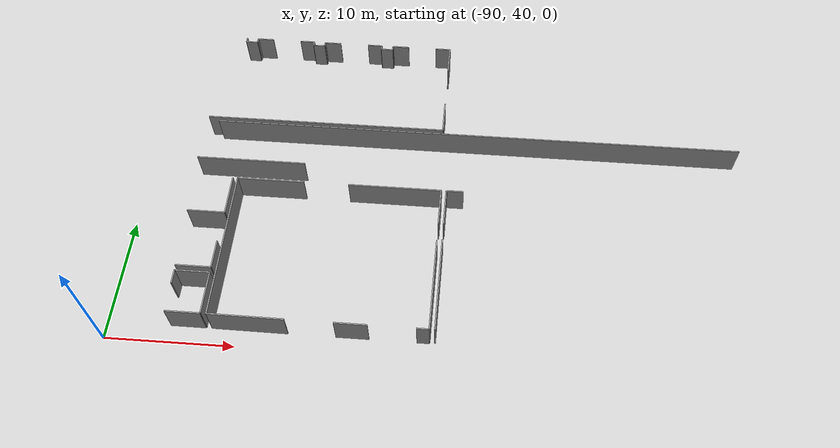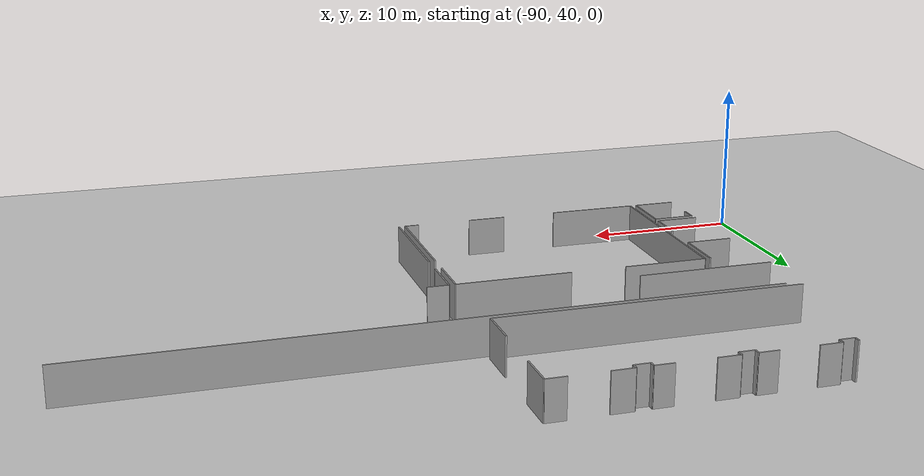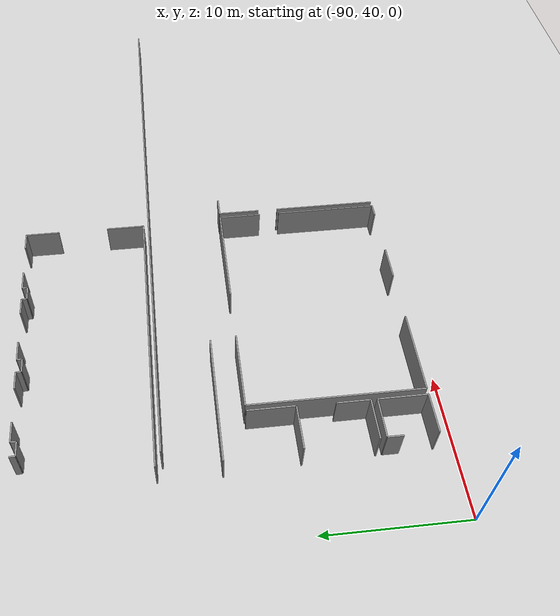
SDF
<sdf version="1.6">
 <world name="default">
  <model name="ground_plane">
   <static>1</static>
   <link name="link">
    <collision name="collision">
     <geometry><plane><normal>0 0 1</normal><size>100 100</size></plane></geometry>
     <surface><friction><ode><mu>100</mu><mu2>50</mu2></ode></friction></surface>
    </collision>
    <visual name="visual">
     <cast_shadows>0</cast_shadows>
     <geometry><plane><normal>0 0 1</normal><size>100 100</size></plane></geometry>
     <material>
      <script><uri>file://media/materials/scripts/gazebo.material</uri><name>Gazebo/Grey</name></script>
     </material>
    </visual>
   </link>
  </model>
  <model name="0510035520_A_40_1_103">
   <static>1</static>
   <link name="Wall_19">
    <collision name="Wall_19_Collision">
     <geometry><box><size>0.416748624691 0.1 2.5</size></box></geometry>
     <pose>0.208374312346 0 1.25 0 0 0</pose>
    </collision>
    <visual name="Wall_19_Visual">
     <pose>0.208374312346 0 1.25 0 0 0</pose>
     <geometry><box><size>0.416748624691 0.1 2.5</size></box></geometry>
     <material>
      <script><uri>file://media/materials/scripts/gazebo.material</uri><name>Gazebo/Grey</name></script>
      <ambient>1 1 1 1</ambient>
     </material>
    </visual>
    <pose>28.1845927374 -0.0 0 0 0 -1.57079632679</pose>
   </link>
   <link name="Wall_20">
    <collision name="Wall_20_Collision">
     <geometry><box><size>0.990602851505 0.1 2.5</size></box></geometry>
     <pose>0.495301425752 0 1.25 0 0 0</pose>
    </collision>
    <visual name="Wall_20_Visual">
     <pose>0.495301425752 0 1.25 0 0 0</pose>
     <geometry><box><size>0.990602851505 0.1 2.5</size></box></geometry>
     <material>
      <script><uri>file://media/materials/scripts/gazebo.material</uri><name>Gazebo/Grey</name></script>
      <ambient>1 1 1 1</ambient>
     </material>
    </visual>
    <pose>28.1845927374 -0.416748624691 0 0 0 0.0</pose>
   </link>
   <link name="Wall_21">
    <collision name="Wall_21_Collision">
     <geometry><box><size>0.39771321248 0.1 2.5</size></box></geometry>
     <pose>0.19885660624 0 1.25 0 0 0</pose>
    </collision>
    <visual name="Wall_21_Visual">
     <pose>0.19885660624 0 1.25 0 0 0</pose>
     <geometry><box><size>0.39771321248 0.1 2.5</size></box></geometry>
     <material>
      <script><uri>file://media/materials/scripts/gazebo.material</uri><name>Gazebo/Grey</name></script>
      <ambient>1 1 1 1</ambient>
     </material>
    </visual>
    <pose>29.1751955889 -0.416748624691 0 0 0 1.57079632679</pose>
   </link>
   <link name="Wall_22">
    <collision name="Wall_22_Collision">
     <geometry><box><size>1.39796067284 0.1 2.5</size></box></geometry>
     <pose>0.698980336419 0 1.25 0 0 0</pose>
    </collision>
    <visual name="Wall_22_Visual">
     <pose>0.698980336419 0 1.25 0 0 0</pose>
     <geometry><box><size>1.39796067284 0.1 2.5</size></box></geometry>
     <material>
      <script><uri>file://media/materials/scripts/gazebo.material</uri><name>Gazebo/Grey</name></script>
      <ambient>1 1 1 1</ambient>
     </material>
    </visual>
    <pose>29.1751955889 -0.0190354122118 0 0 0 0.0</pose>
   </link>
   <link name="Wall_23">
    <collision name="Wall_23_Collision">
     <geometry><box><size>1.24593118064 0.1 2.5</size></box></geometry>
     <pose>0.62296559032 0 1.25 0 0 0</pose>
    </collision>
    <visual name="Wall_23_Visual">
     <pose>0.62296559032 0 1.25 0 0 0</pose>
     <geometry><box><size>1.24593118064 0.1 2.5</size></box></geometry>
     <material>
      <script><uri>file://media/materials/scripts/gazebo.material</uri><name>Gazebo/Grey</name></script>
      <ambient>1 1 1 1</ambient>
     </material>
    </visual>
    <pose>33.0315162975 -0.0190354122118 0 0 0 0.0</pose>
   </link>
   <link name="Wall_24">
    <collision name="Wall_24_Collision">
     <geometry><box><size>0.39111426958 0.1 2.5</size></box></geometry>
     <pose>0.19555713479 0 1.25 0 0 0</pose>
    </collision>
    <visual name="Wall_24_Visual">
     <pose>0.19555713479 0 1.25 0 0 0</pose>
     <geometry><box><size>0.39111426958 0.1 2.5</size></box></geometry>
     <material>
      <script><uri>file://media/materials/scripts/gazebo.material</uri><name>Gazebo/Grey</name></script>
      <ambient>1 1 1 1</ambient>
     </material>
    </visual>
    <pose>34.2774474781 -0.0190354122118 0 0 0 -1.57079632679</pose>
   </link>
   <link name="Wall_25">
    <collision name="Wall_25_Collision">
     <geometry><box><size>0.992379489978 0.1 2.5</size></box></geometry>
     <pose>0.496189744989 0 1.25 0 0 0</pose>
    </collision>
    <visual name="Wall_25_Visual">
     <pose>0.496189744989 0 1.25 0 0 0</pose>
     <geometry><box><size>0.992379489978 0.1 2.5</size></box></geometry>
     <material>
      <script><uri>file://media/materials/scripts/gazebo.material</uri><name>Gazebo/Grey</name></script>
      <ambient>1 1 1 1</ambient>
     </material>
    </visual>
    <pose>34.2774474781 -0.410149681791 0 0 0 0.0</pose>
   </link>
   <link name="Wall_26">
    <collision name="Wall_26_Collision">
     <geometry><box><size>0.374363106833 0.1 2.5</size></box></geometry>
     <pose>0.187181553417 0 1.25 0 0 0</pose>
    </collision>
    <visual name="Wall_26_Visual">
     <pose>0.187181553417 0 1.25 0 0 0</pose>
     <geometry><box><size>0.374363106833 0.1 2.5</size></box></geometry>
     <material>
      <script><uri>file://media/materials/scripts/gazebo.material</uri><name>Gazebo/Grey</name></script>
      <ambient>1 1 1 1</ambient>
     </material>
    </visual>
    <pose>35.2698269681 -0.410149681791 0 0 0 1.57079632679</pose>
   </link>
   <link name="Wall_27">
    <collision name="Wall_27_Collision">
     <geometry><box><size>1.41902652902 0.1 2.5</size></box></geometry>
     <pose>0.70951326451 0 1.25 0 0 0</pose>
    </collision>
    <visual name="Wall_27_Visual">
     <pose>0.70951326451 0 1.25 0 0 0</pose>
     <geometry><box><size>1.41902652902 0.1 2.5</size></box></geometry>
     <material>
      <script><uri>file://media/materials/scripts/gazebo.material</uri><name>Gazebo/Grey</name></script>
      <ambient>1 1 1 1</ambient>
     </material>
    </visual>
    <pose>35.2698269681 -0.0357865749583 0 0 0 0.0</pose>
   </link>
   <link name="Wall_28">
    <collision name="Wall_28_Collision">
     <geometry><box><size>1.23983984873 0.1 2.5</size></box></geometry>
     <pose>0.619919924366 0 1.25 0 0 0</pose>
    </collision>
    <visual name="Wall_28_Visual">
     <pose>0.619919924366 0 1.25 0 0 0</pose>
     <geometry><box><size>1.23983984873 0.1 2.5</size></box></geometry>
     <material>
      <script><uri>file://media/materials/scripts/gazebo.material</uri><name>Gazebo/Grey</name></script>
      <ambient>1 1 1 1</ambient>
     </material>
    </visual>
    <pose>39.1322390086 -0.0357865749583 0 0 0 0.0</pose>
   </link>
   <link name="Wall_29">
    <collision name="Wall_29_Collision">
     <geometry><box><size>0.382231077214 0.1 2.5</size></box></geometry>
     <pose>0.191115538607 0 1.25 0 0 0</pose>
    </collision>
    <visual name="Wall_29_Visual">
     <pose>0.191115538607 0 1.25 0 0 0</pose>
     <geometry><box><size>0.382231077214 0.1 2.5</size></box></geometry>
     <material>
      <script><uri>file://media/materials/scripts/gazebo.material</uri><name>Gazebo/Grey</name></script>
      <ambient>1 1 1 1</ambient>
     </material>
    </visual>
    <pose>40.3720788574 -0.0357865749583 0 0 0 -1.57079632679</pose>
   </link>
   <link name="Wall_30">
    <collision name="Wall_30_Collision">
     <geometry><box><size>1.00989206921 0.1 2.5</size></box></geometry>
     <pose>0.504946034606 0 1.25 0 0 0</pose>
    </collision>
    <visual name="Wall_30_Visual">
     <pose>0.504946034606 0 1.25 0 0 0</pose>
     <geometry><box><size>1.00989206921 0.1 2.5</size></box></geometry>
     <material>
      <script><uri>file://media/materials/scripts/gazebo.material</uri><name>Gazebo/Grey</name></script>
      <ambient>1 1 1 1</ambient>
     </material>
    </visual>
    <pose>40.3720788574 -0.418017652172 0 0 0 0.0</pose>
   </link>
   <link name="Wall_31">
    <collision name="Wall_31_Collision">
     <geometry><box><size>0.385276743168 0.1 2.5</size></box></geometry>
     <pose>0.192638371584 0 1.25 0 0 0</pose>
    </collision>
    <visual name="Wall_31_Visual">
     <pose>0.192638371584 0 1.25 0 0 0</pose>
     <geometry><box><size>0.385276743168 0.1 2.5</size></box></geometry>
     <material>
      <script><uri>file://media/materials/scripts/gazebo.material</uri><name>Gazebo/Grey</name></script>
      <ambient>1 1 1 1</ambient>
     </material>
    </visual>
    <pose>41.3819709266 -0.418017652172 0 0 0 1.57079632679</pose>
   </link>
   <link name="Wall_32">
    <collision name="Wall_32_Collision">
     <geometry><box><size>1.41978794551 0.1 2.5</size></box></geometry>
     <pose>0.709893972754 0 1.25 0 0 0</pose>
    </collision>
    <visual name="Wall_32_Visual">
     <pose>0.709893972754 0 1.25 0 0 0</pose>
     <geometry><box><size>1.41978794551 0.1 2.5</size></box></geometry>
     <material>
      <script><uri>file://media/materials/scripts/gazebo.material</uri><name>Gazebo/Grey</name></script>
      <ambient>1 1 1 1</ambient>
     </material>
    </visual>
    <pose>41.3819709266 -0.0327409090044 0 0 0 0.0</pose>
   </link>
   <link name="Wall_33">
    <collision name="Wall_33_Collision">
     <geometry><box><size>1.27994111712 0.1 2.5</size></box></geometry>
     <pose>0.639970558562 0 1.25 0 0 0</pose>
    </collision>
    <visual name="Wall_33_Visual">
     <pose>0.639970558562 0 1.25 0 0 0</pose>
     <geometry><box><size>1.27994111712 0.1 2.5</size></box></geometry>
     <material>
      <script><uri>file://media/materials/scripts/gazebo.material</uri><name>Gazebo/Grey</name></script>
      <ambient>1 1 1 1</ambient>
     </material>
    </visual>
    <pose>45.2131648911 -0.0327409090044 0 0 0 0.0</pose>
   </link>
   <link name="Wall_34">
    <collision name="Wall_34_Collision">
     <geometry><box><size>2.50302980311 0.1 2.5</size></box></geometry>
     <pose>1.25151490156 0 1.25 0 0 0</pose>
    </collision>
    <visual name="Wall_34_Visual">
     <pose>1.25151490156 0 1.25 0 0 0</pose>
     <geometry><box><size>2.50302980311 0.1 2.5</size></box></geometry>
     <material>
      <script><uri>file://media/materials/scripts/gazebo.material</uri><name>Gazebo/Grey</name></script>
      <ambient>1 1 1 1</ambient>
     </material>
    </visual>
    <pose>46.4931060082 -0.0327409090044 0 0 0 -1.57079632679</pose>
   </link>
   <link name="Wall_35">
    <collision name="Wall_35_Collision">
     <geometry><box><size>2.81064206445 0.1 2.5</size></box></geometry>
     <pose>1.40532103223 0 1.25 0 0 0</pose>
    </collision>
    <visual name="Wall_35_Visual">
     <pose>1.40532103223 0 1.25 0 0 0</pose>
     <geometry><box><size>2.81064206445 0.1 2.5</size></box></geometry>
     <material>
      <script><uri>file://media/materials/scripts/gazebo.material</uri><name>Gazebo/Grey</name></script>
      <ambient>1 1 1 1</ambient>
     </material>
    </visual>
    <pose>46.4931060082 -6.24209237251 0 0 0 -1.57079632679</pose>
   </link>
   <link name="Wall_36">
    <collision name="Wall_36_Collision">
     <geometry><box><size>19.8965742603 0.1 2.5</size></box></geometry>
     <pose>9.94828713016 0 1.25 0 0 0</pose>
    </collision>
    <visual name="Wall_36_Visual">
     <pose>9.94828713016 0 1.25 0 0 0</pose>
     <geometry><box><size>19.8965742603 0.1 2.5</size></box></geometry>
     <material>
      <script><uri>file://media/materials/scripts/gazebo.material</uri><name>Gazebo/Grey</name></script>
      <ambient>1 1 1 1</ambient>
     </material>
    </visual>
    <pose>46.4931060082 -9.05273443696 0 0 0 3.14159265359</pose>
   </link>
   <link name="Wall_76">
    <collision name="Wall_76_Collision">
     <geometry><box><size>7.59614469451 0.1 2.5</size></box></geometry>
     <pose>3.79807234726 0 1.25 0 0 0</pose>
    </collision>
    <visual name="Wall_76_Visual">
     <pose>3.79807234726 0 1.25 0 0 0</pose>
     <geometry><box><size>7.59614469451 0.1 2.5</size></box></geometry>
     <material>
      <script><uri>file://media/materials/scripts/gazebo.material</uri><name>Gazebo/Grey</name></script>
      <ambient>1 1 1 1</ambient>
     </material>
    </visual>
    <pose>47.1961472326 -27.2500809005 0 0 0 1.57079632679</pose>
   </link>
   <link name="Wall_77">
    <collision name="Wall_77_Collision">
     <geometry><box><size>3.08373677832 0.1 2.5</size></box></geometry>
     <pose>1.54186838916 0 1.25 0 0 0</pose>
    </collision>
    <visual name="Wall_77_Visual">
     <pose>1.54186838916 0 1.25 0 0 0</pose>
     <geometry><box><size>3.08373677832 0.1 2.5</size></box></geometry>
     <material>
      <script><uri>file://media/materials/scripts/gazebo.material</uri><name>Gazebo/Grey</name></script>
      <ambient>1 1 1 1</ambient>
     </material>
    </visual>
    <pose>47.1961472326 -18.1780572458 0 0 0 1.57079632679</pose>
   </link>
   <link name="Wall_78">
    <collision name="Wall_78_Collision">
     <geometry><box><size>1.39440739589 0.1 2.5</size></box></geometry>
     <pose>0.697203697946 0 1.25 0 0 0</pose>
    </collision>
    <visual name="Wall_78_Visual">
     <pose>0.697203697946 0 1.25 0 0 0</pose>
     <geometry><box><size>1.39440739589 0.1 2.5</size></box></geometry>
     <material>
      <script><uri>file://media/materials/scripts/gazebo.material</uri><name>Gazebo/Grey</name></script>
      <ambient>1 1 1 1</ambient>
     </material>
    </visual>
    <pose>47.1961472326 -15.0943204675 0 0 0 0.0</pose>
   </link>
   <link name="Wall_84">
    <collision name="Wall_84_Collision">
     <geometry><box><size>12.1306336889 0.1 2.5</size></box></geometry>
     <pose>6.06531684444 0 1.25 0 0 0</pose>
    </collision>
    <visual name="Wall_84_Visual">
     <pose>6.06531684444 0 1.25 0 0 0</pose>
     <geometry><box><size>12.1306336889 0.1 2.5</size></box></geometry>
     <material>
      <script><uri>file://media/materials/scripts/gazebo.material</uri><name>Gazebo/Grey</name></script>
      <ambient>1 1 1 1</ambient>
     </material>
    </visual>
    <pose>30.222397066 -27.2318069048 0 0 0 1.57079632679</pose>
   </link>
   <link name="Wall_85">
    <collision name="Wall_85_Collision">
     <geometry><box><size>5.44285886511 0.1 2.5</size></box></geometry>
     <pose>2.72142943255 0 1.25 0 0 0</pose>
    </collision>
    <visual name="Wall_85_Visual">
     <pose>2.72142943255 0 1.25 0 0 0</pose>
     <geometry><box><size>5.44285886511 0.1 2.5</size></box></geometry>
     <material>
      <script><uri>file://media/materials/scripts/gazebo.material</uri><name>Gazebo/Grey</name></script>
      <ambient>1 1 1 1</ambient>
     </material>
    </visual>
    <pose>30.222397066 -15.1011732159 0 0 0 0.0</pose>
   </link>
   <link name="Wall_86">
    <collision name="Wall_86_Collision">
     <geometry><box><size>7.50274427193 0.1 2.5</size></box></geometry>
     <pose>3.75137213596 0 1.25 0 0 0</pose>
    </collision>
    <visual name="Wall_86_Visual">
     <pose>3.75137213596 0 1.25 0 0 0</pose>
     <geometry><box><size>7.50274427193 0.1 2.5</size></box></geometry>
     <material>
      <script><uri>file://media/materials/scripts/gazebo.material</uri><name>Gazebo/Grey</name></script>
      <ambient>1 1 1 1</ambient>
     </material>
    </visual>
    <pose>39.2769081414 -15.1011732159 0 0 0 0.0</pose>
   </link>
   <link name="Wall_87">
    <collision name="Wall_87_Collision">
     <geometry><box><size>3.12180760274 0.1 2.5</size></box></geometry>
     <pose>1.56090380137 0 1.25 0 0 0</pose>
    </collision>
    <visual name="Wall_87_Visual">
     <pose>1.56090380137 0 1.25 0 0 0</pose>
     <geometry><box><size>3.12180760274 0.1 2.5</size></box></geometry>
     <material>
      <script><uri>file://media/materials/scripts/gazebo.material</uri><name>Gazebo/Grey</name></script>
      <ambient>1 1 1 1</ambient>
     </material>
    </visual>
    <pose>46.7796524134 -15.1011732159 0 0 0 -1.57079632679</pose>
   </link>
   <link name="Wall_88">
    <collision name="Wall_88_Collision">
     <geometry><box><size>7.52761721055 0.1 2.5</size></box></geometry>
     <pose>3.76380860528 0 1.25 0 0 0</pose>
    </collision>
    <visual name="Wall_88_Visual">
     <pose>3.76380860528 0 1.25 0 0 0</pose>
     <geometry><box><size>7.52761721055 0.1 2.5</size></box></geometry>
     <material>
      <script><uri>file://media/materials/scripts/gazebo.material</uri><name>Gazebo/Grey</name></script>
      <ambient>1 1 1 1</ambient>
     </material>
    </visual>
    <pose>46.7796524134 -19.7331235208 0 0 0 -1.57079632679</pose>
   </link>
   <link name="Wall_89">
    <collision name="Wall_89_Collision">
     <geometry><box><size>0.951770610593 0.1 2.5</size></box></geometry>
     <pose>0.475885305296 0 1.25 0 0 0</pose>
    </collision>
    <visual name="Wall_89_Visual">
     <pose>0.475885305296 0 1.25 0 0 0</pose>
     <geometry><box><size>0.951770610593 0.1 2.5</size></box></geometry>
     <material>
      <script><uri>file://media/materials/scripts/gazebo.material</uri><name>Gazebo/Grey</name></script>
      <ambient>1 1 1 1</ambient>
     </material>
    </visual>
    <pose>46.7796524134 -27.2607407313 0 0 0 3.14159265359</pose>
   </link>
   <link name="Wall_90">
    <collision name="Wall_90_Collision">
     <geometry><box><size>2.53247124066 0.1 2.5</size></box></geometry>
     <pose>1.26623562033 0 1.25 0 0 0</pose>
    </collision>
    <visual name="Wall_90_Visual">
     <pose>1.26623562033 0 1.25 0 0 0</pose>
     <geometry><box><size>2.53247124066 0.1 2.5</size></box></geometry>
     <material>
      <script><uri>file://media/materials/scripts/gazebo.material</uri><name>Gazebo/Grey</name></script>
      <ambient>1 1 1 1</ambient>
     </material>
    </visual>
    <pose>42.2205442859 -27.2607407313 0 0 0 3.14159265359</pose>
   </link>
   <link name="Wall_91">
    <collision name="Wall_91_Collision">
     <geometry><box><size>5.82236997454 0.1 2.5</size></box></geometry>
     <pose>2.91118498727 0 1.25 0 0 0</pose>
    </collision>
    <visual name="Wall_91_Visual">
     <pose>2.91118498727 0 1.25 0 0 0</pose>
     <geometry><box><size>5.82236997454 0.1 2.5</size></box></geometry>
     <material>
      <script><uri>file://media/materials/scripts/gazebo.material</uri><name>Gazebo/Grey</name></script>
      <ambient>1 1 1 1</ambient>
     </material>
    </visual>
    <pose>36.0446951479 -27.2607407313 0 0 0 3.13662320888</pose>
   </link>
   <link name="Wall_93">
    <collision name="Wall_93_Collision">
     <geometry><box><size>3.32485199967 0.1 2.5</size></box></geometry>
     <pose>1.66242599984 0 1.25 0 0 0</pose>
    </collision>
    <visual name="Wall_93_Visual">
     <pose>1.66242599984 0 1.25 0 0 0</pose>
     <geometry><box><size>3.32485199967 0.1 2.5</size></box></geometry>
     <material>
      <script><uri>file://media/materials/scripts/gazebo.material</uri><name>Gazebo/Grey</name></script>
      <ambient>1 1 1 1</ambient>
     </material>
    </visual>
    <pose>29.8383893503 -15.1070107423 0 0 0 -1.57079632679</pose>
   </link>
   <link name="Wall_94">
    <collision name="Wall_94_Collision">
     <geometry><box><size>3.01394026688 0.1 2.5</size></box></geometry>
     <pose>1.50697013344 0 1.25 0 0 0</pose>
    </collision>
    <visual name="Wall_94_Visual">
     <pose>1.50697013344 0 1.25 0 0 0</pose>
     <geometry><box><size>3.01394026688 0.1 2.5</size></box></geometry>
     <material>
      <script><uri>file://media/materials/scripts/gazebo.material</uri><name>Gazebo/Grey</name></script>
      <ambient>1 1 1 1</ambient>
     </material>
    </visual>
    <pose>29.8383893503 -18.431862742 0 0 0 3.14159265359</pose>
   </link>
   <link name="Wall_98">
    <collision name="Wall_98_Collision">
     <geometry><box><size>2.30861479305 0.1 2.5</size></box></geometry>
     <pose>1.15430739653 0 1.25 0 0 0</pose>
    </collision>
    <visual name="Wall_98_Visual">
     <pose>1.15430739653 0 1.25 0 0 0</pose>
     <geometry><box><size>2.30861479305 0.1 2.5</size></box></geometry>
     <material>
      <script><uri>file://media/materials/scripts/gazebo.material</uri><name>Gazebo/Grey</name></script>
      <ambient>1 1 1 1</ambient>
     </material>
    </visual>
    <pose>29.7756993928 -21.0544349338 0 0 0 -1.57079632679</pose>
   </link>
   <link name="Wall_99">
    <collision name="Wall_99_Collision">
     <geometry><box><size>2.78526151484 0.1 2.5</size></box></geometry>
     <pose>1.39263075742 0 1.25 0 0 0</pose>
    </collision>
    <visual name="Wall_99_Visual">
     <pose>1.39263075742 0 1.25 0 0 0</pose>
     <geometry><box><size>2.78526151484 0.1 2.5</size></box></geometry>
     <material>
      <script><uri>file://media/materials/scripts/gazebo.material</uri><name>Gazebo/Grey</name></script>
      <ambient>1 1 1 1</ambient>
     </material>
    </visual>
    <pose>29.7756993928 -23.3630497268 0 0 0 3.14159265359</pose>
   </link>
   <link name="Wall_102">
    <collision name="Wall_102_Collision">
     <geometry><box><size>2.71648022538 0.1 2.5</size></box></geometry>
     <pose>1.35824011269 0 1.25 0 0 0</pose>
    </collision>
    <visual name="Wall_102_Visual">
     <pose>1.35824011269 0 1.25 0 0 0</pose>
     <geometry><box><size>2.71648022538 0.1 2.5</size></box></geometry>
     <material>
      <script><uri>file://media/materials/scripts/gazebo.material</uri><name>Gazebo/Grey</name></script>
      <ambient>1 1 1 1</ambient>
     </material>
    </visual>
    <pose>27.0655643048 -23.8084783726 0 0 0 0.0</pose>
   </link>
   <link name="Wall_103">
    <collision name="Wall_103_Collision">
     <geometry><box><size>3.42332853218 0.1 2.5</size></box></geometry>
     <pose>1.71166426609 0 1.25 0 0 0</pose>
    </collision>
    <visual name="Wall_103_Visual">
     <pose>1.71166426609 0 1.25 0 0 0</pose>
     <geometry><box><size>3.42332853218 0.1 2.5</size></box></geometry>
     <material>
      <script><uri>file://media/materials/scripts/gazebo.material</uri><name>Gazebo/Grey</name></script>
      <ambient>1 1 1 1</ambient>
     </material>
    </visual>
    <pose>29.7820445302 -23.8084783726 0 0 0 -1.57079632679</pose>
   </link>
   <link name="Wall_104">
    <collision name="Wall_104_Collision">
     <geometry><box><size>2.71977969683 0.1 2.5</size></box></geometry>
     <pose>1.35988984841 0 1.25 0 0 0</pose>
    </collision>
    <visual name="Wall_104_Visual">
     <pose>1.35988984841 0 1.25 0 0 0</pose>
     <geometry><box><size>2.71977969683 0.1 2.5</size></box></geometry>
     <material>
      <script><uri>file://media/materials/scripts/gazebo.material</uri><name>Gazebo/Grey</name></script>
      <ambient>1 1 1 1</ambient>
     </material>
    </visual>
    <pose>29.7820445302 -27.2318069048 0 0 0 3.14159265359</pose>
   </link>
   <link name="Wall_106">
    <collision name="Wall_106_Collision">
     <geometry><box><size>1.10202840364 0.1 2.5</size></box></geometry>
     <pose>0.551014201818 0 1.25 0 0 0</pose>
    </collision>
    <visual name="Wall_106_Visual">
     <pose>0.551014201818 0 1.25 0 0 0</pose>
     <geometry><box><size>1.10202840364 0.1 2.5</size></box></geometry>
     <material>
      <script><uri>file://media/materials/scripts/gazebo.material</uri><name>Gazebo/Grey</name></script>
      <ambient>1 1 1 1</ambient>
     </material>
    </visual>
    <pose>27.0622648333 -24.9105018369 0 0 0 1.56780232377</pose>
   </link>
   <link name="Wall_107">
    <collision name="Wall_107_Collision">
     <geometry><box><size>43.5692666925 0.1 2.5</size></box></geometry>
     <pose>21.7846333462 0 1.25 0 0 0</pose>
    </collision>
    <visual name="Wall_107_Visual">
     <pose>21.7846333462 0 1.25 0 0 0</pose>
     <geometry><box><size>43.5692666925 0.1 2.5</size></box></geometry>
     <material>
      <script><uri>file://media/materials/scripts/gazebo.material</uri><name>Gazebo/Grey</name></script>
      <ambient>1 1 1 1</ambient>
     </material>
    </visual>
    <pose>27.5411958046 -9.44816339998 0 0 0 0.0</pose>
   </link>
   <link name="Wall_115">
    <collision name="Wall_115_Collision">
     <geometry><box><size>8.90857291515 0.1 2.5</size></box></geometry>
     <pose>4.45428645757 0 1.25 0 0 0</pose>
    </collision>
    <visual name="Wall_115_Visual">
     <pose>4.45428645757 0 1.25 0 0 0</pose>
     <geometry><box><size>8.90857291515 0.1 2.5</size></box></geometry>
     <material>
      <script><uri>file://media/materials/scripts/gazebo.material</uri><name>Gazebo/Grey</name></script>
      <ambient>1 1 1 1</ambient>
     </material>
    </visual>
    <pose>35.4507902869 -13.2874791404 0 0 0 3.14159265359</pose>
   </link>
   <pose>-112.2 68.6448144365 0 0 0 0</pose>
  </model>
 </world>
</sdf>
